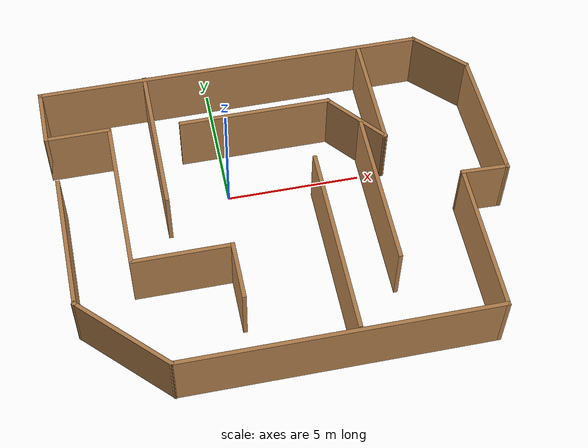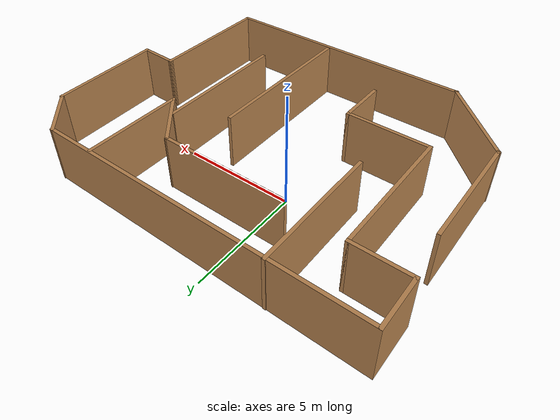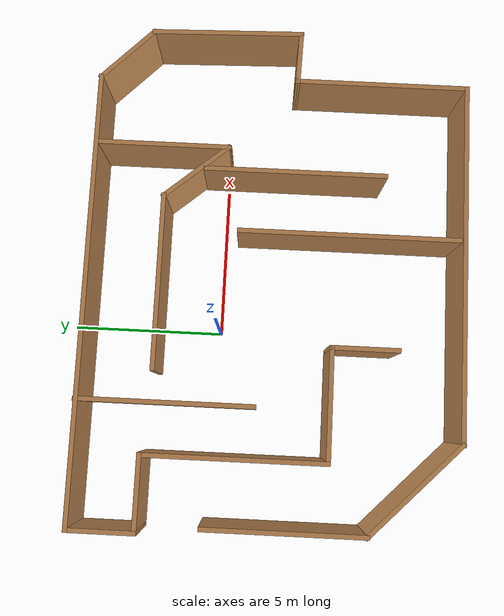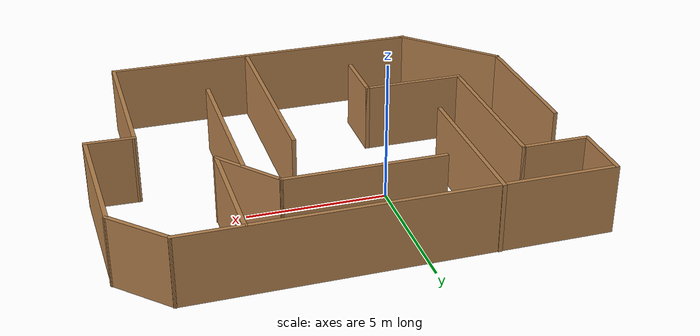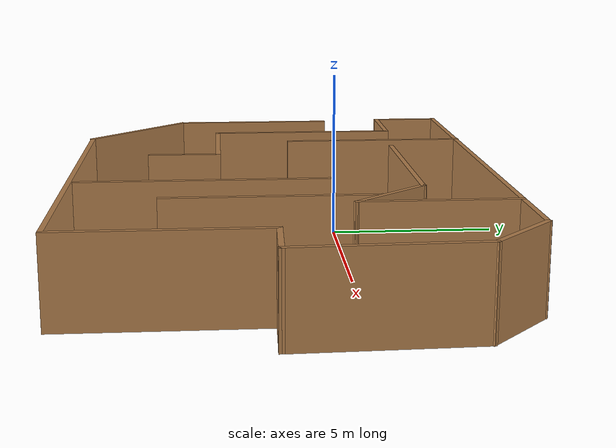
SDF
<?xml version='1.0'?>
<sdf version='1.7'>
  <model name='maze'>
    <pose>1.7772 -1.70371 0 0 -0 0</pose>
    <link name='Wall_1'>
      <collision name='Wall_1_Collision'>
        <geometry>
          <box>
            <size>5.25 0.15 2.5</size>
          </box>
        </geometry>
        <pose>0 0 1.25 0 -0 0</pose>
      </collision>
      <visual name='Wall_1_Visual'>
        <pose>0 0 1.25 0 -0 0</pose>
        <geometry>
          <box>
            <size>5.25 0.15 2.5</size>
          </box>
        </geometry>
        <material>
          <script>
            <uri>file://media/materials/scripts/gazebo.material</uri>
            <name>Gazebo/Wood</name>
          </script>
          <ambient>1 1 1 1</ambient>
        </material>
        <meta>
          <layer>0</layer>
        </meta>
      </visual>
      <pose>-7.96727 -0.610266 0 0 -0 -1.5708</pose>
    </link>
    <link name='Wall_10'>
      <collision name='Wall_10_Collision'>
        <geometry>
          <box>
            <size>2.25 0.15 2.5</size>
          </box>
        </geometry>
        <pose>0 0 1.25 0 -0 0</pose>
      </collision>
      <visual name='Wall_10_Visual'>
        <pose>0 0 1.25 0 -0 0</pose>
        <geometry>
          <box>
            <size>2.25 0.15 2.5</size>
          </box>
        </geometry>
        <material>
          <script>
            <uri>file://media/materials/scripts/gazebo.material</uri>
            <name>Gazebo/Wood</name>
          </script>
          <ambient>1 1 1 1</ambient>
        </material>
        <meta>
          <layer>0</layer>
        </meta>
      </visual>
      <pose>-8.18528 5.0094 0 0 -0 -1.5708</pose>
    </link>
    <link name='Wall_11'>
      <collision name='Wall_11_Collision'>
        <geometry>
          <box>
            <size>2.5 0.15 2.5</size>
          </box>
        </geometry>
        <pose>0 0 1.25 0 -0 0</pose>
      </collision>
      <visual name='Wall_11_Visual'>
        <pose>0 0 1.25 0 -0 0</pose>
        <geometry>
          <box>
            <size>2.5 0.15 2.5</size>
          </box>
        </geometry>
        <material>
          <script>
            <uri>file://media/materials/scripts/gazebo.material</uri>
            <name>Gazebo/Wood</name>
          </script>
          <ambient>1 1 1 1</ambient>
        </material>
        <meta>
          <layer>0</layer>
        </meta>
      </visual>
      <pose>-7.01028 3.9594 0 0 -0 0</pose>
    </link>
    <link name='Wall_12'>
      <collision name='Wall_12_Collision'>
        <geometry>
          <box>
            <size>6 0.15 2.5</size>
          </box>
        </geometry>
        <pose>0 0 1.25 0 -0 0</pose>
      </collision>
      <visual name='Wall_12_Visual'>
        <pose>0 0 1.25 0 -0 0</pose>
        <geometry>
          <box>
            <size>6 0.15 2.5</size>
          </box>
        </geometry>
        <material>
          <script>
            <uri>file://media/materials/scripts/gazebo.material</uri>
            <name>Gazebo/Wood</name>
          </script>
          <ambient>1 1 1 1</ambient>
        </material>
        <meta>
          <layer>0</layer>
        </meta>
      </visual>
      <pose>-5.83528 1.0344 0 0 -0 -1.5708</pose>
    </link>
    <link name='Wall_13'>
      <collision name='Wall_13_Collision'>
        <geometry>
          <box>
            <size>3.75 0.15 2.5</size>
          </box>
        </geometry>
        <pose>0 0 1.25 0 -0 0</pose>
      </collision>
      <visual name='Wall_13_Visual'>
        <pose>0 0 1.25 0 -0 0</pose>
        <geometry>
          <box>
            <size>3.75 0.15 2.5</size>
          </box>
        </geometry>
        <material>
          <script>
            <uri>file://media/materials/scripts/gazebo.material</uri>
            <name>Gazebo/Wood</name>
          </script>
          <ambient>1 1 1 1</ambient>
        </material>
        <meta>
          <layer>0</layer>
        </meta>
      </visual>
      <pose>-4.03528 -1.8906 0 0 -0 0</pose>
    </link>
    <link name='Wall_14'>
      <collision name='Wall_14_Collision'>
        <geometry>
          <box>
            <size>2.25 0.15 2.5</size>
          </box>
        </geometry>
        <pose>0 0 1.25 0 -0 0</pose>
      </collision>
      <visual name='Wall_14_Visual'>
        <pose>0 0 1.25 0 -0 0</pose>
        <geometry>
          <box>
            <size>2.25 0.15 2.5</size>
          </box>
        </geometry>
        <material>
          <script>
            <uri>file://media/materials/scripts/gazebo.material</uri>
            <name>Gazebo/Wood</name>
          </script>
          <ambient>1 1 1 1</ambient>
        </material>
        <meta>
          <layer>0</layer>
        </meta>
      </visual>
      <pose>-2.23528 -2.9406 0 0 -0 -1.5708</pose>
    </link>
    <link name='Wall_16'>
      <collision name='Wall_16_Collision'>
        <geometry>
          <box>
            <size>5.75 0.15 2.5</size>
          </box>
        </geometry>
        <pose>0 0 1.25 0 -0 0</pose>
      </collision>
      <visual name='Wall_16_Visual'>
        <pose>0 0 1.25 0 -0 0</pose>
        <geometry>
          <box>
            <size>5.75 0.15 2.5</size>
          </box>
        </geometry>
        <material>
          <script>
            <uri>file://media/materials/scripts/gazebo.material</uri>
            <name>Gazebo/Wood</name>
          </script>
          <ambient>1 1 1 1</ambient>
        </material>
        <meta>
          <layer>0</layer>
        </meta>
      </visual>
      <pose>-0.364544 3.72993 0 0 -0 3.14159</pose>
    </link>
    <link name='Wall_18'>
      <collision name='Wall_18_Collision'>
        <geometry>
          <box>
            <size>5.75 0.15 2.5</size>
          </box>
        </geometry>
        <pose>0 0 1.25 0 -0 0</pose>
      </collision>
      <visual name='Wall_18_Visual'>
        <pose>0 0 1.25 0 -0 0</pose>
        <geometry>
          <box>
            <size>5.75 0.15 2.5</size>
          </box>
        </geometry>
        <material>
          <script>
            <uri>file://media/materials/scripts/gazebo.material</uri>
            <name>Gazebo/Wood</name>
          </script>
          <ambient>1 1 1 1</ambient>
        </material>
        <meta>
          <layer>0</layer>
        </meta>
      </visual>
      <pose>-4.20262 3.28538 0 0 -0 -1.5708</pose>
    </link>
    <link name='Wall_2'>
      <collision name='Wall_2_Collision'>
        <geometry>
          <box>
            <size>4.25 0.15 2.5</size>
          </box>
        </geometry>
        <pose>0 0 1.25 0 -0 0</pose>
      </collision>
      <visual name='Wall_2_Visual'>
        <pose>0 0 1.25 0 -0 0</pose>
        <geometry>
          <box>
            <size>4.25 0.15 2.5</size>
          </box>
        </geometry>
        <material>
          <script>
            <uri>file://media/materials/scripts/gazebo.material</uri>
            <name>Gazebo/Wood</name>
          </script>
          <ambient>1 1 1 1</ambient>
        </material>
        <meta>
          <layer>0</layer>
        </meta>
      </visual>
      <pose>-6.5177 -4.60984 0 0 -0 -0.785398</pose>
    </link>
    <link name='Wall_20'>
      <collision name='Wall_20_Collision'>
        <geometry>
          <box>
            <size>4.5 0.15 2.5</size>
          </box>
        </geometry>
        <pose>0 0 1.25 0 -0 0</pose>
      </collision>
      <visual name='Wall_20_Visual'>
        <pose>0 0 1.25 0 -0 0</pose>
        <geometry>
          <box>
            <size>4.5 0.15 2.5</size>
          </box>
        </geometry>
        <material>
          <script>
            <uri>file://media/materials/scripts/gazebo.material</uri>
            <name>Gazebo/Wood</name>
          </script>
          <ambient>1 1 1 1</ambient>
        </material>
        <meta>
          <layer>0</layer>
        </meta>
      </visual>
      <pose>4.14851 3.87979 0 0 -0 -1.5708</pose>
    </link>
    <link name='Wall_22'>
      <collision name='Wall_22_Collision'>
        <geometry>
          <box>
            <size>7.25 0.15 2.5</size>
          </box>
        </geometry>
        <pose>0 0 1.25 0 -0 0</pose>
      </collision>
      <visual name='Wall_22_Visual'>
        <pose>0 0 1.25 0 -0 0</pose>
        <geometry>
          <box>
            <size>7.25 0.15 2.5</size>
          </box>
        </geometry>
        <material>
          <script>
            <uri>file://media/materials/scripts/gazebo.material</uri>
            <name>Gazebo/Wood</name>
          </script>
          <ambient>1 1 1 1</ambient>
        </material>
        <meta>
          <layer>0</layer>
        </meta>
      </visual>
      <pose>1.39539 -2.32847 0 0 -0 -1.5708</pose>
    </link>
    <link name='Wall_24'>
      <collision name='Wall_24_Collision'>
        <geometry>
          <box>
            <size>2.8025 0.15 2.5</size>
          </box>
        </geometry>
        <pose>0 0 1.25 0 -0 0</pose>
      </collision>
      <visual name='Wall_24_Visual'>
        <pose>0 0 1.25 0 -0 0</pose>
        <geometry>
          <box>
            <size>2.8025 0.15 2.5</size>
          </box>
        </geometry>
        <material>
          <script>
            <uri>file://media/materials/scripts/gazebo.material</uri>
            <name>Gazebo/Wood</name>
          </script>
          <ambient>1 1 1 1</ambient>
        </material>
        <meta>
          <layer>0</layer>
        </meta>
      </visual>
      <pose>3.29198 2.71736 0 0 -0 -0.868692</pose>
    </link>
    <link name='Wall_26'>
      <collision name='Wall_26_Collision'>
        <geometry>
          <box>
            <size>6 0.15 2.5</size>
          </box>
        </geometry>
        <pose>0 0 1.25 0 -0 0</pose>
      </collision>
      <visual name='Wall_26_Visual'>
        <pose>0 0 1.25 0 -0 0</pose>
        <geometry>
          <box>
            <size>6 0.15 2.5</size>
          </box>
        </geometry>
        <material>
          <script>
            <uri>file://media/materials/scripts/gazebo.material</uri>
            <name>Gazebo/Wood</name>
          </script>
          <ambient>1 1 1 1</ambient>
        </material>
        <meta>
          <layer>0</layer>
        </meta>
      </visual>
      <pose>3.41434 -0.510449 0 0 -0 -1.5708</pose>
    </link>
    <link name='Wall_3'>
      <collision name='Wall_3_Collision'>
        <geometry>
          <box>
            <size>11.75 0.15 2.5</size>
          </box>
        </geometry>
        <pose>0 0 1.25 0 -0 0</pose>
      </collision>
      <visual name='Wall_3_Visual'>
        <pose>0 0 1.25 0 -0 0</pose>
        <geometry>
          <box>
            <size>11.75 0.15 2.5</size>
          </box>
        </geometry>
        <material>
          <script>
            <uri>file://media/materials/scripts/gazebo.material</uri>
            <name>Gazebo/Wood</name>
          </script>
          <ambient>1 1 1 1</ambient>
        </material>
        <meta>
          <layer>0</layer>
        </meta>
      </visual>
      <pose>0.731866 -6.0594 0 0 -0 0</pose>
    </link>
    <link name='Wall_4'>
      <collision name='Wall_4_Collision'>
        <geometry>
          <box>
            <size>5.75 0.15 2.5</size>
          </box>
        </geometry>
        <pose>0 0 1.25 0 -0 0</pose>
      </collision>
      <visual name='Wall_4_Visual'>
        <pose>0 0 1.25 0 -0 0</pose>
        <geometry>
          <box>
            <size>5.75 0.15 2.5</size>
          </box>
        </geometry>
        <material>
          <script>
            <uri>file://media/materials/scripts/gazebo.material</uri>
            <name>Gazebo/Wood</name>
          </script>
          <ambient>1 1 1 1</ambient>
        </material>
        <meta>
          <layer>0</layer>
        </meta>
      </visual>
      <pose>6.53187 -3.2594 0 0 -0 1.5708</pose>
    </link>
    <link name='Wall_5'>
      <collision name='Wall_5_Collision'>
        <geometry>
          <box>
            <size>1.80186 0.15 2.5</size>
          </box>
        </geometry>
        <pose>0 0 1.25 0 -0 0</pose>
      </collision>
      <visual name='Wall_5_Visual'>
        <pose>0 0 1.25 0 -0 0</pose>
        <geometry>
          <box>
            <size>1.80186 0.15 2.5</size>
          </box>
        </geometry>
        <material>
          <script>
            <uri>file://media/materials/scripts/gazebo.material</uri>
            <name>Gazebo/Wood</name>
          </script>
          <ambient>1 1 1 1</ambient>
        </material>
        <meta>
          <layer>0</layer>
        </meta>
      </visual>
      <pose>7.35732 -0.48736 0 0 -0 -0.033855</pose>
    </link>
    <link name='Wall_7'>
      <collision name='Wall_7_Collision'>
        <geometry>
          <box>
            <size>5.06493 0.15 2.5</size>
          </box>
        </geometry>
        <pose>0 0 1.25 0 -0 0</pose>
      </collision>
      <visual name='Wall_7_Visual'>
        <pose>0 0 1.25 0 -0 0</pose>
        <geometry>
          <box>
            <size>5.06493 0.15 2.5</size>
          </box>
        </geometry>
        <material>
          <script>
            <uri>file://media/materials/scripts/gazebo.material</uri>
            <name>Gazebo/Wood</name>
          </script>
          <ambient>1 1 1 1</ambient>
        </material>
        <meta>
          <layer>0</layer>
        </meta>
      </visual>
      <pose>8.11431 1.94119 0 0 -0 1.59866</pose>
    </link>
    <link name='Wall_8'>
      <collision name='Wall_8_Collision'>
        <geometry>
          <box>
            <size>2.5 0.15 2.5</size>
          </box>
        </geometry>
        <pose>0 0 1.25 0 -0 0</pose>
      </collision>
      <visual name='Wall_8_Visual'>
        <pose>0 0 1.25 0 -0 0</pose>
        <geometry>
          <box>
            <size>2.5 0.15 2.5</size>
          </box>
        </geometry>
        <material>
          <script>
            <uri>file://media/materials/scripts/gazebo.material</uri>
            <name>Gazebo/Wood</name>
          </script>
          <ambient>1 1 1 1</ambient>
        </material>
        <meta>
          <layer>0</layer>
        </meta>
      </visual>
      <pose>7.21499 5.22855 0 0 -0 2.35619</pose>
    </link>
    <link name='Wall_9'>
      <collision name='Wall_9_Collision'>
        <geometry>
          <box>
            <size>14.7194 0.15 2.5</size>
          </box>
        </geometry>
        <pose>0 0 1.25 0 -0 0</pose>
      </collision>
      <visual name='Wall_9_Visual'>
        <pose>0 0 1.25 0 -0 0</pose>
        <geometry>
          <box>
            <size>14.7194 0.15 2.5</size>
          </box>
        </geometry>
        <material>
          <script>
            <uri>file://media/materials/scripts/gazebo.material</uri>
            <name>Gazebo/Wood</name>
          </script>
          <ambient>1 1 1 1</ambient>
        </material>
        <meta>
          <layer>0</layer>
        </meta>
      </visual>
      <pose>-0.900571 6.0594 0 0 -0 3.14159</pose>
    </link>
    <static>1</static>
  </model>
</sdf>
